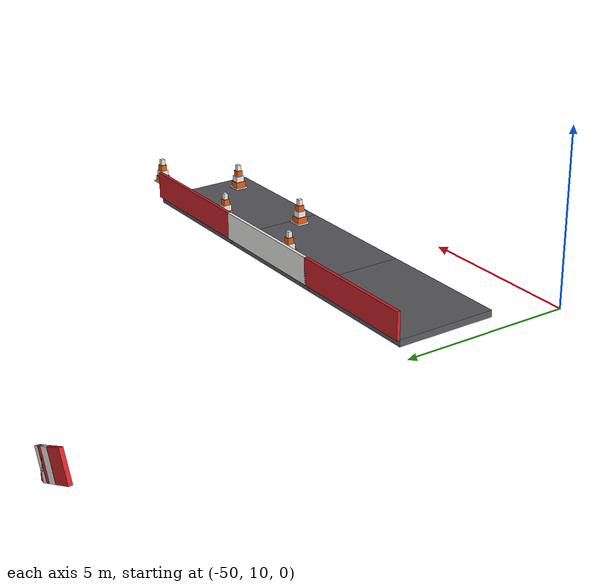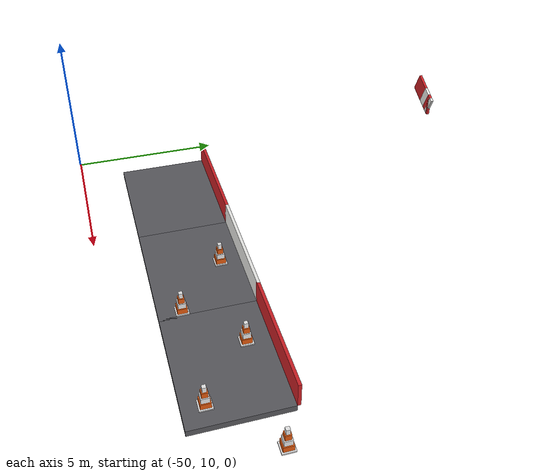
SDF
<sdf version="1.10">
 <world name="ika_parkur">
  <model name="parkur_road">
   <static>true</static>
   <link name="road_0106">
    <pose>-47 13 -0.1 0 0 0</pose>
    <collision name="road_0106_col">
     <geometry><box><size>4.08 3 0.2</size></box></geometry>
     <surface>
      <friction><ode><mu>1</mu><mu2>1</mu2></ode></friction>
      <contact><ode><kp>1000000</kp><kd>1</kd></ode></contact>
     </surface>
    </collision>
    <visual name="road_0106_vis">
     <geometry><box><size>4.08 3 0.2</size></box></geometry>
     <material>
      <ambient>0.35 0.35 0.37 1</ambient>
      <diffuse>0.35 0.35 0.37 1</diffuse>
      <specular>0.1 0.1 0.1 1</specular>
     </material>
    </visual>
   </link>
   <link name="road_0107">
    <pose>-43 13 -0.1 0 0 0</pose>
    <collision name="road_0107_col">
     <geometry><box><size>4.08 3 0.2</size></box></geometry>
     <surface>
      <friction><ode><mu>1</mu><mu2>1</mu2></ode></friction>
      <contact><ode><kp>1000000</kp><kd>1</kd></ode></contact>
     </surface>
    </collision>
    <visual name="road_0107_vis">
     <geometry><box><size>4.08 3 0.2</size></box></geometry>
     <material>
      <ambient>0.35 0.35 0.37 1</ambient>
      <diffuse>0.35 0.35 0.37 1</diffuse>
      <specular>0.1 0.1 0.1 1</specular>
     </material>
    </visual>
   </link>
   <link name="road_0108">
    <pose>-39 13 -0.1 0 0 0</pose>
    <collision name="road_0108_col">
     <geometry><box><size>4.08 3 0.2</size></box></geometry>
     <surface>
      <friction><ode><mu>1</mu><mu2>1</mu2></ode></friction>
      <contact><ode><kp>1000000</kp><kd>1</kd></ode></contact>
     </surface>
    </collision>
    <visual name="road_0108_vis">
     <geometry><box><size>4.08 3 0.2</size></box></geometry>
     <material>
      <ambient>0.35 0.35 0.37 1</ambient>
      <diffuse>0.35 0.35 0.37 1</diffuse>
      <specular>0.1 0.1 0.1 1</specular>
     </material>
    </visual>
   </link>
  </model>
  <model name="parkur_barriers">
   <static>true</static>
   <link name="barrier_l_0106">
    <pose>-47 14.55 0.4 0 0 0</pose>
    <collision name="barrier_l_0106_col">
     <geometry><box><size>4.08 0.1 0.8</size></box></geometry>
     <surface>
      <friction><ode><mu>0.6</mu><mu2>0.6</mu2></ode></friction>
      <contact><ode><kp>1000000</kp><kd>1</kd></ode></contact>
     </surface>
    </collision>
    <visual name="barrier_l_0106_vis">
     <geometry><box><size>4.08 0.1 0.8</size></box></geometry>
     <material>
      <ambient>0.81 0.13 0.15 1</ambient>
      <diffuse>0.81 0.13 0.15 1</diffuse>
      <specular>0.1 0.1 0.1 1</specular>
     </material>
    </visual>
   </link>
   <link name="barrier_l_0107">
    <pose>-43 14.55 0.4 0 0 0</pose>
    <collision name="barrier_l_0107_col">
     <geometry><box><size>4.08 0.1 0.8</size></box></geometry>
     <surface>
      <friction><ode><mu>0.6</mu><mu2>0.6</mu2></ode></friction>
      <contact><ode><kp>1000000</kp><kd>1</kd></ode></contact>
     </surface>
    </collision>
    <visual name="barrier_l_0107_vis">
     <geometry><box><size>4.08 0.1 0.8</size></box></geometry>
     <material>
      <ambient>0.93 0.93 0.92 1</ambient>
      <diffuse>0.93 0.93 0.92 1</diffuse>
      <specular>0.1 0.1 0.1 1</specular>
     </material>
    </visual>
   </link>
   <link name="barrier_l_0108">
    <pose>-39 14.55 0.4 0 0 0</pose>
    <collision name="barrier_l_0108_col">
     <geometry><box><size>4.08 0.1 0.8</size></box></geometry>
     <surface>
      <friction><ode><mu>0.6</mu><mu2>0.6</mu2></ode></friction>
      <contact><ode><kp>1000000</kp><kd>1</kd></ode></contact>
     </surface>
    </collision>
    <visual name="barrier_l_0108_vis">
     <geometry><box><size>4.08 0.1 0.8</size></box></geometry>
     <material>
      <ambient>0.81 0.13 0.15 1</ambient>
      <diffuse>0.81 0.13 0.15 1</diffuse>
      <specular>0.1 0.1 0.1 1</specular>
     </material>
    </visual>
   </link>
   <link name="barrier_l_0158">
    <pose>-49.941406 24.45 0.4 0 0 3.141593</pose>
    <collision name="barrier_l_0158_col">
     <geometry><box><size>0.119531 0.1 0.8</size></box></geometry>
     <surface>
      <friction><ode><mu>0.6</mu><mu2>0.6</mu2></ode></friction>
      <contact><ode><kp>1000000</kp><kd>1</kd></ode></contact>
     </surface>
    </collision>
    <visual name="barrier_l_0158_vis">
     <geometry><box><size>0.119531 0.1 0.8</size></box></geometry>
     <material>
      <ambient>0.81 0.13 0.15 1</ambient>
      <diffuse>0.81 0.13 0.15 1</diffuse>
      <specular>0.1 0.1 0.1 1</specular>
     </material>
    </visual>
   </link>
   <link name="barrier_l_0159">
    <pose>-49.913979 24.45 0.399925 0 -0.422854 3.141593</pose>
    <collision name="barrier_l_0159_col">
     <geometry><box><size>0.174768 0.1 0.8</size></box></geometry>
     <surface>
      <friction><ode><mu>0.6</mu><mu2>0.6</mu2></ode></friction>
      <contact><ode><kp>1000000</kp><kd>1</kd></ode></contact>
     </surface>
    </collision>
    <visual name="barrier_l_0159_vis">
     <geometry><box><size>0.174768 0.1 0.8</size></box></geometry>
     <material>
      <ambient>0.93 0.93 0.92 1</ambient>
      <diffuse>0.93 0.93 0.92 1</diffuse>
      <specular>0.1 0.1 0.1 1</specular>
     </material>
    </visual>
   </link>
   <link name="barrier_l_0160">
    <pose>-50.070229 24.45 0.470237 0 -0.422854 3.141593</pose>
    <collision name="barrier_l_0160_col">
     <geometry><box><size>0.174768 0.1 0.8</size></box></geometry>
     <surface>
      <friction><ode><mu>0.6</mu><mu2>0.6</mu2></ode></friction>
      <contact><ode><kp>1000000</kp><kd>1</kd></ode></contact>
     </surface>
    </collision>
    <visual name="barrier_l_0160_vis">
     <geometry><box><size>0.174768 0.1 0.8</size></box></geometry>
     <material>
      <ambient>0.81 0.13 0.15 1</ambient>
      <diffuse>0.81 0.13 0.15 1</diffuse>
      <specular>0.1 0.1 0.1 1</specular>
     </material>
    </visual>
   </link>
   <link name="barrier_l_0161">
    <pose>-50.304604 24.45 0.575706 0 -0.422854 3.141593</pose>
    <collision name="barrier_l_0161_col">
     <geometry><box><size>0.349537 0.1 0.8</size></box></geometry>
     <surface>
      <friction><ode><mu>0.6</mu><mu2>0.6</mu2></ode></friction>
      <contact><ode><kp>1000000</kp><kd>1</kd></ode></contact>
     </surface>
    </collision>
    <visual name="barrier_l_0161_vis">
     <geometry><box><size>0.349537 0.1 0.8</size></box></geometry>
     <material>
      <ambient>0.93 0.93 0.92 1</ambient>
      <diffuse>0.93 0.93 0.92 1</diffuse>
      <specular>0.1 0.1 0.1 1</specular>
     </material>
    </visual>
   </link>
   <link name="barrier_l_0162">
    <pose>-50.773354 24.45 0.786644 0 -0.422854 3.141593</pose>
    <collision name="barrier_l_0162_col">
     <geometry><box><size>0.699073 0.1 0.8</size></box></geometry>
     <surface>
      <friction><ode><mu>0.6</mu><mu2>0.6</mu2></ode></friction>
      <contact><ode><kp>1000000</kp><kd>1</kd></ode></contact>
     </surface>
    </collision>
    <visual name="barrier_l_0162_vis">
     <geometry><box><size>0.699073 0.1 0.8</size></box></geometry>
     <material>
      <ambient>0.81 0.13 0.15 1</ambient>
      <diffuse>0.81 0.13 0.15 1</diffuse>
      <specular>0.1 0.1 0.1 1</specular>
     </material>
    </visual>
   </link>
  </model>
  <model name="trafik_konisi_00">
   <static>false</static>
   <pose>-43.091411 13.850604 0 0 0 0</pose>
   <link name="cone00_link">
    <inertial>
     <pose>0 0 0.238568 0 0 0</pose>
     <mass>0.8</mass>
     <inertia>
      <ixx>0.033024</ixx>
      <iyy>0.033024</iyy>
      <izz>0.011175</izz>
      <ixy>0</ixy>
      <ixz>0</ixz>
      <iyz>0</iyz>
     </inertia>
    </inertial>
    <collision name="cone00_base_col">
     <pose>0 0 0.02 0 0 0</pose>
     <geometry><box><size>0.4 0.4 0.04</size></box></geometry>
     <surface>
      <friction><ode><mu>1</mu><mu2>1</mu2></ode></friction>
      <contact><ode><kp>1000000</kp><kd>1</kd></ode></contact>
     </surface>
    </collision>
    <visual name="cone00_base_vis">
     <pose>0 0 0.02 0 0 0</pose>
     <geometry><box><size>0.4 0.4 0.04</size></box></geometry>
     <material>
      <ambient>0.92 0.92 0.92 1</ambient>
      <diffuse>0.92 0.92 0.92 1</diffuse>
      <specular>0.1 0.1 0.1 1</specular>
     </material>
    </visual>
    <collision name="cone00_t0_col">
     <pose>0 0 0.12875 0 0 0</pose>
     <geometry><box><size>0.312 0.312 0.1775</size></box></geometry>
     <surface>
      <friction><ode><mu>0.8</mu><mu2>0.8</mu2></ode></friction>
      <contact><ode><kp>1000000</kp><kd>1</kd></ode></contact>
     </surface>
    </collision>
    <visual name="cone00_t0_vis">
     <pose>0 0 0.12875 0 0 0</pose>
     <geometry><box><size>0.312 0.312 0.1775</size></box></geometry>
     <material>
      <ambient>0.9 0.35 0.05 1</ambient>
      <diffuse>0.9 0.35 0.05 1</diffuse>
      <specular>0.1 0.1 0.1 1</specular>
     </material>
    </visual>
    <collision name="cone00_t1_col">
     <pose>0 0 0.30625 0 0 0</pose>
     <geometry><box><size>0.24804 0.24804 0.1775</size></box></geometry>
     <surface>
      <friction><ode><mu>0.8</mu><mu2>0.8</mu2></ode></friction>
      <contact><ode><kp>1000000</kp><kd>1</kd></ode></contact>
     </surface>
    </collision>
    <visual name="cone00_t1_vis">
     <pose>0 0 0.30625 0 0 0</pose>
     <geometry><box><size>0.24804 0.24804 0.1775</size></box></geometry>
     <material>
      <ambient>0.92 0.92 0.92 1</ambient>
      <diffuse>0.92 0.92 0.92 1</diffuse>
      <specular>0.1 0.1 0.1 1</specular>
     </material>
    </visual>
    <collision name="cone00_t2_col">
     <pose>0 0 0.48375 0 0 0</pose>
     <geometry><box><size>0.18408 0.18408 0.1775</size></box></geometry>
     <surface>
      <friction><ode><mu>0.8</mu><mu2>0.8</mu2></ode></friction>
      <contact><ode><kp>1000000</kp><kd>1</kd></ode></contact>
     </surface>
    </collision>
    <visual name="cone00_t2_vis">
     <pose>0 0 0.48375 0 0 0</pose>
     <geometry><box><size>0.18408 0.18408 0.1775</size></box></geometry>
     <material>
      <ambient>0.9 0.35 0.05 1</ambient>
      <diffuse>0.9 0.35 0.05 1</diffuse>
      <specular>0.1 0.1 0.1 1</specular>
     </material>
    </visual>
    <collision name="cone00_t3_col">
     <pose>0 0 0.66125 0 0 0</pose>
     <geometry><box><size>0.12012 0.12012 0.1775</size></box></geometry>
     <surface>
      <friction><ode><mu>0.8</mu><mu2>0.8</mu2></ode></friction>
      <contact><ode><kp>1000000</kp><kd>1</kd></ode></contact>
     </surface>
    </collision>
    <visual name="cone00_t3_vis">
     <pose>0 0 0.66125 0 0 0</pose>
     <geometry><box><size>0.12012 0.12012 0.1775</size></box></geometry>
     <material>
      <ambient>0.92 0.92 0.92 1</ambient>
      <diffuse>0.92 0.92 0.92 1</diffuse>
      <specular>0.1 0.1 0.1 1</specular>
     </material>
    </visual>
   </link>
  </model>
  <model name="trafik_konisi_01">
   <static>false</static>
   <pose>-41.219385 12.2364 0 0 0 0</pose>
   <link name="cone01_link">
    <inertial>
     <pose>0 0 0.238568 0 0 0</pose>
     <mass>0.8</mass>
     <inertia>
      <ixx>0.033024</ixx>
      <iyy>0.033024</iyy>
      <izz>0.011175</izz>
      <ixy>0</ixy>
      <ixz>0</ixz>
      <iyz>0</iyz>
     </inertia>
    </inertial>
    <collision name="cone01_base_col">
     <pose>0 0 0.02 0 0 0</pose>
     <geometry><box><size>0.4 0.4 0.04</size></box></geometry>
     <surface>
      <friction><ode><mu>1</mu><mu2>1</mu2></ode></friction>
      <contact><ode><kp>1000000</kp><kd>1</kd></ode></contact>
     </surface>
    </collision>
    <visual name="cone01_base_vis">
     <pose>0 0 0.02 0 0 0</pose>
     <geometry><box><size>0.4 0.4 0.04</size></box></geometry>
     <material>
      <ambient>0.92 0.92 0.92 1</ambient>
      <diffuse>0.92 0.92 0.92 1</diffuse>
      <specular>0.1 0.1 0.1 1</specular>
     </material>
    </visual>
    <collision name="cone01_t0_col">
     <pose>0 0 0.12875 0 0 0</pose>
     <geometry><box><size>0.312 0.312 0.1775</size></box></geometry>
     <surface>
      <friction><ode><mu>0.8</mu><mu2>0.8</mu2></ode></friction>
      <contact><ode><kp>1000000</kp><kd>1</kd></ode></contact>
     </surface>
    </collision>
    <visual name="cone01_t0_vis">
     <pose>0 0 0.12875 0 0 0</pose>
     <geometry><box><size>0.312 0.312 0.1775</size></box></geometry>
     <material>
      <ambient>0.9 0.35 0.05 1</ambient>
      <diffuse>0.9 0.35 0.05 1</diffuse>
      <specular>0.1 0.1 0.1 1</specular>
     </material>
    </visual>
    <collision name="cone01_t1_col">
     <pose>0 0 0.30625 0 0 0</pose>
     <geometry><box><size>0.24804 0.24804 0.1775</size></box></geometry>
     <surface>
      <friction><ode><mu>0.8</mu><mu2>0.8</mu2></ode></friction>
      <contact><ode><kp>1000000</kp><kd>1</kd></ode></contact>
     </surface>
    </collision>
    <visual name="cone01_t1_vis">
     <pose>0 0 0.30625 0 0 0</pose>
     <geometry><box><size>0.24804 0.24804 0.1775</size></box></geometry>
     <material>
      <ambient>0.92 0.92 0.92 1</ambient>
      <diffuse>0.92 0.92 0.92 1</diffuse>
      <specular>0.1 0.1 0.1 1</specular>
     </material>
    </visual>
    <collision name="cone01_t2_col">
     <pose>0 0 0.48375 0 0 0</pose>
     <geometry><box><size>0.18408 0.18408 0.1775</size></box></geometry>
     <surface>
      <friction><ode><mu>0.8</mu><mu2>0.8</mu2></ode></friction>
      <contact><ode><kp>1000000</kp><kd>1</kd></ode></contact>
     </surface>
    </collision>
    <visual name="cone01_t2_vis">
     <pose>0 0 0.48375 0 0 0</pose>
     <geometry><box><size>0.18408 0.18408 0.1775</size></box></geometry>
     <material>
      <ambient>0.9 0.35 0.05 1</ambient>
      <diffuse>0.9 0.35 0.05 1</diffuse>
      <specular>0.1 0.1 0.1 1</specular>
     </material>
    </visual>
    <collision name="cone01_t3_col">
     <pose>0 0 0.66125 0 0 0</pose>
     <geometry><box><size>0.12012 0.12012 0.1775</size></box></geometry>
     <surface>
      <friction><ode><mu>0.8</mu><mu2>0.8</mu2></ode></friction>
      <contact><ode><kp>1000000</kp><kd>1</kd></ode></contact>
     </surface>
    </collision>
    <visual name="cone01_t3_vis">
     <pose>0 0 0.66125 0 0 0</pose>
     <geometry><box><size>0.12012 0.12012 0.1775</size></box></geometry>
     <material>
      <ambient>0.92 0.92 0.92 1</ambient>
      <diffuse>0.92 0.92 0.92 1</diffuse>
      <specular>0.1 0.1 0.1 1</specular>
     </material>
    </visual>
   </link>
  </model>
  <model name="trafik_konisi_02">
   <static>false</static>
   <pose>-39.539812 13.783588 0 0 0 0</pose>
   <link name="cone02_link">
    <inertial>
     <pose>0 0 0.238568 0 0 0</pose>
     <mass>0.8</mass>
     <inertia>
      <ixx>0.033024</ixx>
      <iyy>0.033024</iyy>
      <izz>0.011175</izz>
      <ixy>0</ixy>
      <ixz>0</ixz>
      <iyz>0</iyz>
     </inertia>
    </inertial>
    <collision name="cone02_base_col">
     <pose>0 0 0.02 0 0 0</pose>
     <geometry><box><size>0.4 0.4 0.04</size></box></geometry>
     <surface>
      <friction><ode><mu>1</mu><mu2>1</mu2></ode></friction>
      <contact><ode><kp>1000000</kp><kd>1</kd></ode></contact>
     </surface>
    </collision>
    <visual name="cone02_base_vis">
     <pose>0 0 0.02 0 0 0</pose>
     <geometry><box><size>0.4 0.4 0.04</size></box></geometry>
     <material>
      <ambient>0.92 0.92 0.92 1</ambient>
      <diffuse>0.92 0.92 0.92 1</diffuse>
      <specular>0.1 0.1 0.1 1</specular>
     </material>
    </visual>
    <collision name="cone02_t0_col">
     <pose>0 0 0.12875 0 0 0</pose>
     <geometry><box><size>0.312 0.312 0.1775</size></box></geometry>
     <surface>
      <friction><ode><mu>0.8</mu><mu2>0.8</mu2></ode></friction>
      <contact><ode><kp>1000000</kp><kd>1</kd></ode></contact>
     </surface>
    </collision>
    <visual name="cone02_t0_vis">
     <pose>0 0 0.12875 0 0 0</pose>
     <geometry><box><size>0.312 0.312 0.1775</size></box></geometry>
     <material>
      <ambient>0.9 0.35 0.05 1</ambient>
      <diffuse>0.9 0.35 0.05 1</diffuse>
      <specular>0.1 0.1 0.1 1</specular>
     </material>
    </visual>
    <collision name="cone02_t1_col">
     <pose>0 0 0.30625 0 0 0</pose>
     <geometry><box><size>0.24804 0.24804 0.1775</size></box></geometry>
     <surface>
      <friction><ode><mu>0.8</mu><mu2>0.8</mu2></ode></friction>
      <contact><ode><kp>1000000</kp><kd>1</kd></ode></contact>
     </surface>
    </collision>
    <visual name="cone02_t1_vis">
     <pose>0 0 0.30625 0 0 0</pose>
     <geometry><box><size>0.24804 0.24804 0.1775</size></box></geometry>
     <material>
      <ambient>0.92 0.92 0.92 1</ambient>
      <diffuse>0.92 0.92 0.92 1</diffuse>
      <specular>0.1 0.1 0.1 1</specular>
     </material>
    </visual>
    <collision name="cone02_t2_col">
     <pose>0 0 0.48375 0 0 0</pose>
     <geometry><box><size>0.18408 0.18408 0.1775</size></box></geometry>
     <surface>
      <friction><ode><mu>0.8</mu><mu2>0.8</mu2></ode></friction>
      <contact><ode><kp>1000000</kp><kd>1</kd></ode></contact>
     </surface>
    </collision>
    <visual name="cone02_t2_vis">
     <pose>0 0 0.48375 0 0 0</pose>
     <geometry><box><size>0.18408 0.18408 0.1775</size></box></geometry>
     <material>
      <ambient>0.9 0.35 0.05 1</ambient>
      <diffuse>0.9 0.35 0.05 1</diffuse>
      <specular>0.1 0.1 0.1 1</specular>
     </material>
    </visual>
    <collision name="cone02_t3_col">
     <pose>0 0 0.66125 0 0 0</pose>
     <geometry><box><size>0.12012 0.12012 0.1775</size></box></geometry>
     <surface>
      <friction><ode><mu>0.8</mu><mu2>0.8</mu2></ode></friction>
      <contact><ode><kp>1000000</kp><kd>1</kd></ode></contact>
     </surface>
    </collision>
    <visual name="cone02_t3_vis">
     <pose>0 0 0.66125 0 0 0</pose>
     <geometry><box><size>0.12012 0.12012 0.1775</size></box></geometry>
     <material>
      <ambient>0.92 0.92 0.92 1</ambient>
      <diffuse>0.92 0.92 0.92 1</diffuse>
      <specular>0.1 0.1 0.1 1</specular>
     </material>
    </visual>
   </link>
  </model>
  <model name="trafik_konisi_03">
   <static>false</static>
   <pose>-37.642419 12.163574 0 0 0 0</pose>
   <link name="cone03_link">
    <inertial>
     <pose>0 0 0.238568 0 0 0</pose>
     <mass>0.8</mass>
     <inertia>
      <ixx>0.033024</ixx>
      <iyy>0.033024</iyy>
      <izz>0.011175</izz>
      <ixy>0</ixy>
      <ixz>0</ixz>
      <iyz>0</iyz>
     </inertia>
    </inertial>
    <collision name="cone03_base_col">
     <pose>0 0 0.02 0 0 0</pose>
     <geometry><box><size>0.4 0.4 0.04</size></box></geometry>
     <surface>
      <friction><ode><mu>1</mu><mu2>1</mu2></ode></friction>
      <contact><ode><kp>1000000</kp><kd>1</kd></ode></contact>
     </surface>
    </collision>
    <visual name="cone03_base_vis">
     <pose>0 0 0.02 0 0 0</pose>
     <geometry><box><size>0.4 0.4 0.04</size></box></geometry>
     <material>
      <ambient>0.92 0.92 0.92 1</ambient>
      <diffuse>0.92 0.92 0.92 1</diffuse>
      <specular>0.1 0.1 0.1 1</specular>
     </material>
    </visual>
    <collision name="cone03_t0_col">
     <pose>0 0 0.12875 0 0 0</pose>
     <geometry><box><size>0.312 0.312 0.1775</size></box></geometry>
     <surface>
      <friction><ode><mu>0.8</mu><mu2>0.8</mu2></ode></friction>
      <contact><ode><kp>1000000</kp><kd>1</kd></ode></contact>
     </surface>
    </collision>
    <visual name="cone03_t0_vis">
     <pose>0 0 0.12875 0 0 0</pose>
     <geometry><box><size>0.312 0.312 0.1775</size></box></geometry>
     <material>
      <ambient>0.9 0.35 0.05 1</ambient>
      <diffuse>0.9 0.35 0.05 1</diffuse>
      <specular>0.1 0.1 0.1 1</specular>
     </material>
    </visual>
    <collision name="cone03_t1_col">
     <pose>0 0 0.30625 0 0 0</pose>
     <geometry><box><size>0.24804 0.24804 0.1775</size></box></geometry>
     <surface>
      <friction><ode><mu>0.8</mu><mu2>0.8</mu2></ode></friction>
      <contact><ode><kp>1000000</kp><kd>1</kd></ode></contact>
     </surface>
    </collision>
    <visual name="cone03_t1_vis">
     <pose>0 0 0.30625 0 0 0</pose>
     <geometry><box><size>0.24804 0.24804 0.1775</size></box></geometry>
     <material>
      <ambient>0.92 0.92 0.92 1</ambient>
      <diffuse>0.92 0.92 0.92 1</diffuse>
      <specular>0.1 0.1 0.1 1</specular>
     </material>
    </visual>
    <collision name="cone03_t2_col">
     <pose>0 0 0.48375 0 0 0</pose>
     <geometry><box><size>0.18408 0.18408 0.1775</size></box></geometry>
     <surface>
      <friction><ode><mu>0.8</mu><mu2>0.8</mu2></ode></friction>
      <contact><ode><kp>1000000</kp><kd>1</kd></ode></contact>
     </surface>
    </collision>
    <visual name="cone03_t2_vis">
     <pose>0 0 0.48375 0 0 0</pose>
     <geometry><box><size>0.18408 0.18408 0.1775</size></box></geometry>
     <material>
      <ambient>0.9 0.35 0.05 1</ambient>
      <diffuse>0.9 0.35 0.05 1</diffuse>
      <specular>0.1 0.1 0.1 1</specular>
     </material>
    </visual>
    <collision name="cone03_t3_col">
     <pose>0 0 0.66125 0 0 0</pose>
     <geometry><box><size>0.12012 0.12012 0.1775</size></box></geometry>
     <surface>
      <friction><ode><mu>0.8</mu><mu2>0.8</mu2></ode></friction>
      <contact><ode><kp>1000000</kp><kd>1</kd></ode></contact>
     </surface>
    </collision>
    <visual name="cone03_t3_vis">
     <pose>0 0 0.66125 0 0 0</pose>
     <geometry><box><size>0.12012 0.12012 0.1775</size></box></geometry>
     <material>
      <ambient>0.92 0.92 0.92 1</ambient>
      <diffuse>0.92 0.92 0.92 1</diffuse>
      <specular>0.1 0.1 0.1 1</specular>
     </material>
    </visual>
   </link>
  </model>
  <model name="trafik_konisi_04">
   <static>false</static>
   <pose>-35.820879 13.861475 0 0 0 0</pose>
   <link name="cone04_link">
    <inertial>
     <pose>0 0 0.238568 0 0 0</pose>
     <mass>0.8</mass>
     <inertia>
      <ixx>0.033024</ixx>
      <iyy>0.033024</iyy>
      <izz>0.011175</izz>
      <ixy>0</ixy>
      <ixz>0</ixz>
      <iyz>0</iyz>
     </inertia>
    </inertial>
    <collision name="cone04_base_col">
     <pose>0 0 0.02 0 0 0</pose>
     <geometry><box><size>0.4 0.4 0.04</size></box></geometry>
     <surface>
      <friction><ode><mu>1</mu><mu2>1</mu2></ode></friction>
      <contact><ode><kp>1000000</kp><kd>1</kd></ode></contact>
     </surface>
    </collision>
    <visual name="cone04_base_vis">
     <pose>0 0 0.02 0 0 0</pose>
     <geometry><box><size>0.4 0.4 0.04</size></box></geometry>
     <material>
      <ambient>0.92 0.92 0.92 1</ambient>
      <diffuse>0.92 0.92 0.92 1</diffuse>
      <specular>0.1 0.1 0.1 1</specular>
     </material>
    </visual>
    <collision name="cone04_t0_col">
     <pose>0 0 0.12875 0 0 0</pose>
     <geometry><box><size>0.312 0.312 0.1775</size></box></geometry>
     <surface>
      <friction><ode><mu>0.8</mu><mu2>0.8</mu2></ode></friction>
      <contact><ode><kp>1000000</kp><kd>1</kd></ode></contact>
     </surface>
    </collision>
    <visual name="cone04_t0_vis">
     <pose>0 0 0.12875 0 0 0</pose>
     <geometry><box><size>0.312 0.312 0.1775</size></box></geometry>
     <material>
      <ambient>0.9 0.35 0.05 1</ambient>
      <diffuse>0.9 0.35 0.05 1</diffuse>
      <specular>0.1 0.1 0.1 1</specular>
     </material>
    </visual>
    <collision name="cone04_t1_col">
     <pose>0 0 0.30625 0 0 0</pose>
     <geometry><box><size>0.24804 0.24804 0.1775</size></box></geometry>
     <surface>
      <friction><ode><mu>0.8</mu><mu2>0.8</mu2></ode></friction>
      <contact><ode><kp>1000000</kp><kd>1</kd></ode></contact>
     </surface>
    </collision>
    <visual name="cone04_t1_vis">
     <pose>0 0 0.30625 0 0 0</pose>
     <geometry><box><size>0.24804 0.24804 0.1775</size></box></geometry>
     <material>
      <ambient>0.92 0.92 0.92 1</ambient>
      <diffuse>0.92 0.92 0.92 1</diffuse>
      <specular>0.1 0.1 0.1 1</specular>
     </material>
    </visual>
    <collision name="cone04_t2_col">
     <pose>0 0 0.48375 0 0 0</pose>
     <geometry><box><size>0.18408 0.18408 0.1775</size></box></geometry>
     <surface>
      <friction><ode><mu>0.8</mu><mu2>0.8</mu2></ode></friction>
      <contact><ode><kp>1000000</kp><kd>1</kd></ode></contact>
     </surface>
    </collision>
    <visual name="cone04_t2_vis">
     <pose>0 0 0.48375 0 0 0</pose>
     <geometry><box><size>0.18408 0.18408 0.1775</size></box></geometry>
     <material>
      <ambient>0.9 0.35 0.05 1</ambient>
      <diffuse>0.9 0.35 0.05 1</diffuse>
      <specular>0.1 0.1 0.1 1</specular>
     </material>
    </visual>
    <collision name="cone04_t3_col">
     <pose>0 0 0.66125 0 0 0</pose>
     <geometry><box><size>0.12012 0.12012 0.1775</size></box></geometry>
     <surface>
      <friction><ode><mu>0.8</mu><mu2>0.8</mu2></ode></friction>
      <contact><ode><kp>1000000</kp><kd>1</kd></ode></contact>
     </surface>
    </collision>
    <visual name="cone04_t3_vis">
     <pose>0 0 0.66125 0 0 0</pose>
     <geometry><box><size>0.12012 0.12012 0.1775</size></box></geometry>
     <material>
      <ambient>0.92 0.92 0.92 1</ambient>
      <diffuse>0.92 0.92 0.92 1</diffuse>
      <specular>0.1 0.1 0.1 1</specular>
     </material>
    </visual>
   </link>
  </model>
 </world>
</sdf>
